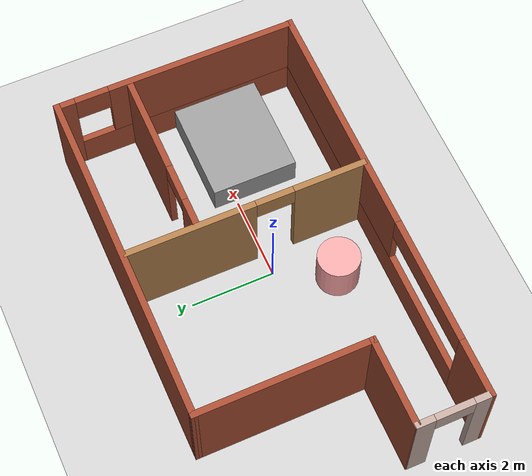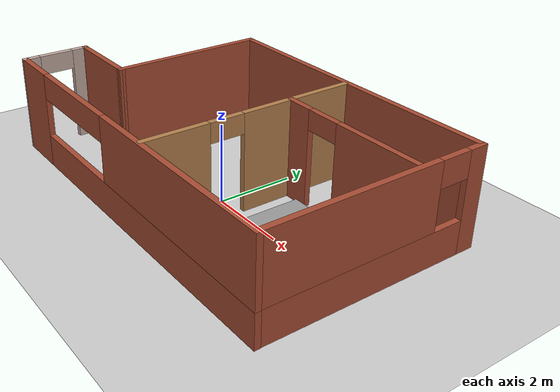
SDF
<sdf version="1.6">
 <world name="apartmentworld">
  <light name="sun" type="directional">
   <pose>0 0 10 0 -0 0</pose>
   <diffuse>0.8 0.8 0.8 1</diffuse>
   <specular>0.2 0.2 0.2 1</specular>
   <attenuation>
    <range>1000</range>
    <constant>0.9</constant>
    <linear>0.01</linear>
    <quadratic>0.001</quadratic>
   </attenuation>
   <direction>-0.5 0.1 -0.9</direction>
  </light>
  <model name="ground_plane">
   <static>1</static>
   <link name="link">
    <collision name="collision">
     <geometry><plane><normal>0 0 1</normal><size>100 100</size></plane></geometry>
     <surface><friction><ode><mu>100</mu><mu2>50</mu2></ode></friction></surface>
    </collision>
    <visual name="visual">
     <cast_shadows>0</cast_shadows>
     <geometry><plane><normal>0 0 1</normal><size>100 100</size></plane></geometry>
     <material>
      <script><uri>file://media/materials/scripts/gazebo.material</uri><name>Gazebo/Grey</name></script>
     </material>
    </visual>
   </link>
  </model>
  <gravity>0 0 -9.8</gravity>
  <magnetic_field>6e-06 2.3e-05 -4.2e-05</magnetic_field>
  <atmosphere type="adiabatic"/>
  <physics name="default_physics" default="0" type="ode">
   <max_step_size>0.001</max_step_size>
   <real_time_factor>1</real_time_factor>
   <real_time_update_rate>1000</real_time_update_rate>
  </physics>
  <scene><ambient>0.4 0.4 0.4 1</ambient><background>0.7 0.7 0.7 1</background><shadows>1</shadows></scene>
  <spherical_coordinates>
   <surface_model>EARTH_WGS84</surface_model>
   <latitude_deg>0</latitude_deg>
   <longitude_deg>0</longitude_deg>
   <elevation>0</elevation>
   <heading_deg>0</heading_deg>
  </spherical_coordinates>
  <model name="apartment">
   <pose>-0.357003 0.389911 0 0 -0 0</pose>
   <link name="Wall_18">
    <pose>-4.98321 -2.01625 0 0 0 -1.5708</pose>
    <visual name="Wall_18_Visual_0">
     <pose>-0.675077 0 1.25 0 -0 0</pose>
     <geometry><box><size>0.449847 0.15 2.5</size></box></geometry>
     <material>
      <script><uri>file://media/materials/scripts/gazebo.material</uri><name>Gazebo/Grey</name></script>
      <ambient>0.760784 0.662745 0.627451 1</ambient>
     </material>
     <meta><layer>0</layer></meta>
    </visual>
    <collision name="Wall_18_Collision_0">
     <geometry><box><size>0.449847 0.15 2.5</size></box></geometry>
     <pose>-0.675077 0 1.25 0 -0 0</pose>
    </collision>
    <visual name="Wall_18_Visual_1">
     <pose>0.674923 0 1.25 0 -0 0</pose>
     <geometry><box><size>0.450153 0.15 2.5</size></box></geometry>
     <material>
      <script><uri>file://media/materials/scripts/gazebo.material</uri><name>Gazebo/Grey</name></script>
      <ambient>0.760784 0.662745 0.627451 1</ambient>
     </material>
     <meta><layer>0</layer></meta>
    </visual>
    <collision name="Wall_18_Collision_1">
     <geometry><box><size>0.450153 0.15 2.5</size></box></geometry>
     <pose>0.674923 0 1.25 0 -0 0</pose>
    </collision>
    <visual name="Wall_18_Visual_2">
     <pose>-0.000153 0 2.25 0 -0 0</pose>
     <geometry><box><size>0.9 0.15 0.5</size></box></geometry>
     <material>
      <script><uri>file://media/materials/scripts/gazebo.material</uri><name>Gazebo/Grey</name></script>
      <ambient>0.760784 0.662745 0.627451 1</ambient>
     </material>
     <meta><layer>0</layer></meta>
    </visual>
    <collision name="Wall_18_Collision_2">
     <geometry><box><size>0.9 0.15 0.5</size></box></geometry>
     <pose>-0.000153 0 2.25 0 -0 0</pose>
    </collision>
   </link>
   <link name="Wall_20">
    <pose>0 -2.8457 0 0 0 -0.000893</pose>
    <visual name="Wall_20_Visual_0">
     <pose>-4.372 0 1.25 0 -0 0</pose>
     <geometry><box><size>1.37243 0.15 2.5</size></box></geometry>
     <material>
      <script><uri>file://media/materials/scripts/gazebo.material</uri><name>Gazebo/Bricks</name></script>
      <ambient>0.988235 0.984314 1 1</ambient>
     </material>
     <meta><layer>0</layer></meta>
    </visual>
    <collision name="Wall_20_Collision_0">
     <geometry><box><size>1.37243 0.15 2.5</size></box></geometry>
     <pose>-4.372 0 1.25 0 -0 0</pose>
    </collision>
    <visual name="Wall_20_Visual_1">
     <pose>0.686214 0 0.425 0 -0 0</pose>
     <geometry><box><size>8.74399 0.15 0.85</size></box></geometry>
     <material>
      <script><uri>file://media/materials/scripts/gazebo.material</uri><name>Gazebo/Bricks</name></script>
      <ambient>0.988235 0.984314 1 1</ambient>
     </material>
     <meta><layer>0</layer></meta>
    </visual>
    <collision name="Wall_20_Collision_1">
     <geometry><box><size>8.74399 0.15 0.85</size></box></geometry>
     <pose>0.686214 0 0.425 0 -0 0</pose>
    </collision>
    <visual name="Wall_20_Visual_2">
     <pose>2.18621 0 1.675 0 -0 0</pose>
     <geometry><box><size>5.74399 0.15 1.65</size></box></geometry>
     <material>
      <script><uri>file://media/materials/scripts/gazebo.material</uri><name>Gazebo/Bricks</name></script>
      <ambient>0.988235 0.984314 1 1</ambient>
     </material>
     <meta><layer>0</layer></meta>
    </visual>
    <collision name="Wall_20_Collision_2">
     <geometry><box><size>5.74399 0.15 1.65</size></box></geometry>
     <pose>2.18621 0 1.675 0 -0 0</pose>
    </collision>
    <visual name="Wall_20_Visual_3">
     <pose>-2.18578 0 2.175 0 -0 0</pose>
     <geometry><box><size>3 0.15 0.65</size></box></geometry>
     <material>
      <script><uri>file://media/materials/scripts/gazebo.material</uri><name>Gazebo/Bricks</name></script>
      <ambient>0.988235 0.984314 1 1</ambient>
     </material>
     <meta><layer>0</layer></meta>
    </visual>
    <collision name="Wall_20_Collision_3">
     <geometry><box><size>3 0.15 0.65</size></box></geometry>
     <pose>-2.18578 0 2.175 0 -0 0</pose>
    </collision>
   </link>
   <link name="Wall_22">
    <pose>2.89619 1.13191 0 0 -0 0</pose>
    <visual name="Wall_22_Visual_0">
     <pose>-1.61763 0 1.25 0 -0 0</pose>
     <geometry><box><size>0.764739 0.15 2.5</size></box></geometry>
     <material>
      <script><uri>file://media/materials/scripts/gazebo.material</uri><name>Gazebo/Bricks</name></script>
      <ambient>1 1 1 1</ambient>
     </material>
     <meta><layer>0</layer></meta>
    </visual>
    <collision name="Wall_22_Collision_0">
     <geometry><box><size>0.764739 0.15 2.5</size></box></geometry>
     <pose>-1.61763 0 1.25 0 -0 0</pose>
    </collision>
    <visual name="Wall_22_Visual_1">
     <pose>0.832369 0 1.25 0 -0 0</pose>
     <geometry><box><size>2.33526 0.15 2.5</size></box></geometry>
     <material>
      <script><uri>file://media/materials/scripts/gazebo.material</uri><name>Gazebo/Bricks</name></script>
      <ambient>1 1 1 1</ambient>
     </material>
     <meta><layer>0</layer></meta>
    </visual>
    <collision name="Wall_22_Collision_1">
     <geometry><box><size>2.33526 0.15 2.5</size></box></geometry>
     <pose>0.832369 0 1.25 0 -0 0</pose>
    </collision>
    <visual name="Wall_22_Visual_2">
     <pose>-0.785261 0 2.25 0 -0 0</pose>
     <geometry><box><size>0.9 0.15 0.5</size></box></geometry>
     <material>
      <script><uri>file://media/materials/scripts/gazebo.material</uri><name>Gazebo/Bricks</name></script>
      <ambient>1 1 1 1</ambient>
     </material>
     <meta><layer>0</layer></meta>
    </visual>
    <collision name="Wall_22_Collision_2">
     <geometry><box><size>0.9 0.15 0.5</size></box></geometry>
     <pose>-0.785261 0 2.25 0 -0 0</pose>
    </collision>
   </link>
   <link name="Wall_24">
    <pose>4.97357 0.050208 0 0 0 -1.5708</pose>
    <visual name="Wall_24_Visual_0">
     <pose>-2.62835 0 1.25 0 -0 0</pose>
     <geometry><box><size>0.493289 0.15 2.5</size></box></geometry>
     <material>
      <script><uri>file://media/materials/scripts/gazebo.material</uri><name>Gazebo/Bricks</name></script>
      <ambient>1 1 1 1</ambient>
     </material>
     <meta><layer>0</layer></meta>
    </visual>
    <collision name="Wall_24_Collision_0">
     <geometry><box><size>0.493289 0.15 2.5</size></box></geometry>
     <pose>-2.62835 0 1.25 0 -0 0</pose>
    </collision>
    <visual name="Wall_24_Visual_1">
     <pose>0.246645 0 0.425 0 -0 0</pose>
     <geometry><box><size>5.25671 0.15 0.85</size></box></geometry>
     <material>
      <script><uri>file://media/materials/scripts/gazebo.material</uri><name>Gazebo/Bricks</name></script>
      <ambient>1 1 1 1</ambient>
     </material>
     <meta><layer>0</layer></meta>
    </visual>
    <collision name="Wall_24_Collision_1">
     <geometry><box><size>5.25671 0.15 0.85</size></box></geometry>
     <pose>0.246645 0 0.425 0 -0 0</pose>
    </collision>
    <visual name="Wall_24_Visual_2">
     <pose>0.646645 0 1.675 0 -0 0</pose>
     <geometry><box><size>4.45671 0.15 1.65</size></box></geometry>
     <material>
      <script><uri>file://media/materials/scripts/gazebo.material</uri><name>Gazebo/Bricks</name></script>
      <ambient>1 1 1 1</ambient>
     </material>
     <meta><layer>0</layer></meta>
    </visual>
    <collision name="Wall_24_Collision_2">
     <geometry><box><size>4.45671 0.15 1.65</size></box></geometry>
     <pose>0.646645 0 1.675 0 -0 0</pose>
    </collision>
    <visual name="Wall_24_Visual_3">
     <pose>-1.98171 0 2.175 0 -0 0</pose>
     <geometry><box><size>0.8 0.15 0.65</size></box></geometry>
     <material>
      <script><uri>file://media/materials/scripts/gazebo.material</uri><name>Gazebo/Bricks</name></script>
      <ambient>1 1 1 1</ambient>
     </material>
     <meta><layer>0</layer></meta>
    </visual>
    <collision name="Wall_24_Collision_3">
     <geometry><box><size>0.8 0.15 0.65</size></box></geometry>
     <pose>-1.98171 0 2.175 0 -0 0</pose>
    </collision>
   </link>
   <link name="Wall_26">
    <collision name="Wall_26_Collision">
     <geometry><box><size>8.09508 0.15 2.5</size></box></geometry>
     <pose>0 0 1.25 0 -0 0</pose>
    </collision>
    <visual name="Wall_26_Visual">
     <pose>0 0 1.25 0 -0 0</pose>
     <geometry><box><size>8.09508 0.15 2.5</size></box></geometry>
     <material>
      <script><uri>file://media/materials/scripts/gazebo.material</uri><name>Gazebo/Bricks</name></script>
      <ambient>1 1 1 1</ambient>
     </material>
     <meta><layer>0</layer></meta>
    </visual>
    <pose>1.00103 2.84989 0 0 -0 8.1e-05</pose>
   </link>
   <link name="Wall_28">
    <collision name="Wall_28_Collision">
     <geometry><box><size>4.16794 0.15 2.5</size></box></geometry>
     <pose>0 0 1.25 0 -0 0</pose>
    </collision>
    <visual name="Wall_28_Visual">
     <pose>0 0 1.25 0 -0 0</pose>
     <geometry><box><size>4.16794 0.15 2.5</size></box></geometry>
     <material>
      <script><uri>file://media/materials/scripts/gazebo.material</uri><name>Gazebo/Bricks</name></script>
      <ambient>1 1 1 1</ambient>
     </material>
     <meta><layer>0</layer></meta>
    </visual>
    <pose>-2.96487 0.840605 0 0 0 -1.56749</pose>
   </link>
   <link name="Wall_5">
    <pose>0.942944 -0.014592 0 0 0 -1.5708</pose>
    <visual name="Wall_5_Visual_0">
     <pose>-1.31758 0 1.25 0 -0 0</pose>
     <geometry><box><size>3.06484 0.15 2.5</size></box></geometry>
     <material>
      <script><uri>file://media/materials/scripts/gazebo.material</uri><name>Gazebo/Wood</name></script>
      <ambient>1 1 1 1</ambient>
     </material>
     <meta><layer>0</layer></meta>
    </visual>
    <collision name="Wall_5_Collision_0">
     <geometry><box><size>3.06484 0.15 2.5</size></box></geometry>
     <pose>-1.31758 0 1.25 0 -0 0</pose>
    </collision>
    <visual name="Wall_5_Visual_1">
     <pose>1.98242 0 1.25 0 -0 0</pose>
     <geometry><box><size>1.73516 0.15 2.5</size></box></geometry>
     <material>
      <script><uri>file://media/materials/scripts/gazebo.material</uri><name>Gazebo/Wood</name></script>
      <ambient>1 1 1 1</ambient>
     </material>
     <meta><layer>0</layer></meta>
    </visual>
    <collision name="Wall_5_Collision_1">
     <geometry><box><size>1.73516 0.15 2.5</size></box></geometry>
     <pose>1.98242 0 1.25 0 -0 0</pose>
    </collision>
    <visual name="Wall_5_Visual_2">
     <pose>0.664839 0 2.25 0 -0 0</pose>
     <geometry><box><size>0.9 0.15 0.5</size></box></geometry>
     <material>
      <script><uri>file://media/materials/scripts/gazebo.material</uri><name>Gazebo/Wood</name></script>
      <ambient>1 1 1 1</ambient>
     </material>
     <meta><layer>0</layer></meta>
    </visual>
    <collision name="Wall_5_Collision_2">
     <geometry><box><size>0.9 0.15 0.5</size></box></geometry>
     <pose>0.664839 0 2.25 0 -0 0</pose>
    </collision>
   </link>
   <link name="Wall_9">
    <collision name="Wall_9_Collision">
     <geometry><box><size>2.16472 0.15 2.5</size></box></geometry>
     <pose>0 0 1.25 0 -0 0</pose>
    </collision>
    <visual name="Wall_9_Visual">
     <pose>0 0 1.25 0 -0 0</pose>
     <geometry><box><size>2.16472 0.15 2.5</size></box></geometry>
     <material>
      <script><uri>file://media/materials/scripts/gazebo.material</uri><name>Gazebo/Bricks</name></script>
      <ambient>1 1 1 1</ambient>
     </material>
     <meta><layer>0</layer></meta>
    </visual>
    <pose>-3.96558 -1.16836 0 0 -0 3.14159</pose>
   </link>
   <static>1</static>
  </model>
  <model name="whiteBox">
   <link name="link">
    <inertial>
     <mass>1</mass>
     <inertia>
      <ixx>0.166667</ixx>
      <ixy>0</ixy>
      <ixz>0</ixz>
      <iyy>0.166667</iyy>
      <iyz>0</iyz>
      <izz>0.166667</izz>
     </inertia>
    </inertial>
    <visual name="visual">
     <geometry><box><size>2.41216 2.0405 0.710265</size></box></geometry>
     <material>
      <script><name>Gazebo/Grey</name><uri>file://media/materials/scripts/gazebo.material</uri></script>
      <shader type="pixel"><normal_map>__default__</normal_map></shader>
      <ambient>1 1 1 1</ambient>
      <diffuse>0.7 0.7 0.7 1</diffuse>
      <specular>0.01 0.01 0.01 1</specular>
      <emissive>0 0 0 1</emissive>
     </material>
    </visual>
    <collision name="collision">
     <geometry><box><size>2.41216 2.0405 0.710265</size></box></geometry>
     <surface>
      <friction>
       <ode><mu>1</mu><mu2>1</mu2><fdir1>0 0 0</fdir1><slip1>0</slip1><slip2>0</slip2></ode>
       <torsional>
        <coefficient>1</coefficient>
        <patch_radius>0</patch_radius>
        <surface_radius>0</surface_radius>
        <use_patch_radius>1</use_patch_radius>
        <ode><slip>0</slip></ode>
       </torsional>
      </friction>
      <bounce><restitution_coefficient>0</restitution_coefficient><threshold>1e+06</threshold></bounce>
      <contact>
       <collide_without_contact>0</collide_without_contact>
       <collide_without_contact_bitmask>1</collide_without_contact_bitmask>
       <collide_bitmask>1</collide_bitmask>
       <ode>
        <soft_cfm>0</soft_cfm>
        <soft_erp>0.2</soft_erp>
        <kp>1e+13</kp>
        <kd>1</kd>
        <max_vel>0.01</max_vel>
        <min_depth>0</min_depth>
       </ode>
       <bullet>
        <split_impulse>1</split_impulse>
        <split_impulse_penetration_threshold>-0.01</split_impulse_penetration_threshold>
        <soft_cfm>0</soft_cfm>
        <soft_erp>0.2</soft_erp>
        <kp>1e+13</kp>
        <kd>1</kd>
       </bullet>
      </contact>
     </surface>
    </collision>
   </link>
   <static>0</static>
   <pose>3.24587 -0.453566 0.5 0 -0 0</pose>
  </model>
  <model name="cilynderTable">
   <link name="link">
    <inertial>
     <mass>1</mass>
     <inertia><ixx>0.145833</ixx><ixy>0</ixy><ixz>0</ixz><iyy>0.145833</iyy><iyz>0</iyz><izz>0.125</izz></inertia>
    </inertial>
    <visual name="visual">
     <geometry><cylinder><radius>0.5</radius><length>1</length></cylinder></geometry>
     <material>
      <script><name>Gazebo/Grey</name><uri>file://media/materials/scripts/gazebo.material</uri></script>
      <shader type="pixel"><normal_map>__default__</normal_map></shader>
      <ambient>1 0.65 0.65 1</ambient>
      <diffuse>0.7 0.7 0.7 1</diffuse>
      <specular>0.01 0.01 0.01 1</specular>
      <emissive>0 0 0 1</emissive>
     </material>
    </visual>
    <collision name="collision">
     <geometry><cylinder><radius>0.5</radius><length>1</length></cylinder></geometry>
     <surface>
      <friction>
       <ode><mu>1</mu><mu2>1</mu2><fdir1>0 0 0</fdir1><slip1>0</slip1><slip2>0</slip2></ode>
       <torsional>
        <coefficient>1</coefficient>
        <patch_radius>0</patch_radius>
        <surface_radius>0</surface_radius>
        <use_patch_radius>1</use_patch_radius>
        <ode><slip>0</slip></ode>
       </torsional>
      </friction>
      <bounce><restitution_coefficient>0</restitution_coefficient><threshold>1e+06</threshold></bounce>
      <contact>
       <collide_without_contact>0</collide_without_contact>
       <collide_without_contact_bitmask>1</collide_without_contact_bitmask>
       <collide_bitmask>1</collide_bitmask>
       <ode>
        <soft_cfm>0</soft_cfm>
        <soft_erp>0.2</soft_erp>
        <kp>1e+13</kp>
        <kd>1</kd>
        <max_vel>0.01</max_vel>
        <min_depth>0</min_depth>
       </ode>
       <bullet>
        <split_impulse>1</split_impulse>
        <split_impulse_penetration_threshold>-0.01</split_impulse_penetration_threshold>
        <soft_cfm>0</soft_cfm>
        <soft_erp>0.2</soft_erp>
        <kp>1e+13</kp>
        <kd>1</kd>
       </bullet>
      </contact>
     </surface>
    </collision>
   </link>
   <static>0</static>
   <pose>-0.635807 -1.32591 0.5 0 -0 0</pose>
  </model>
 </world>
</sdf>
